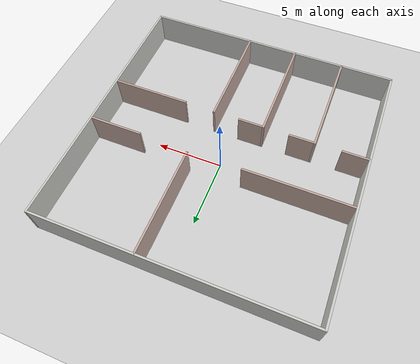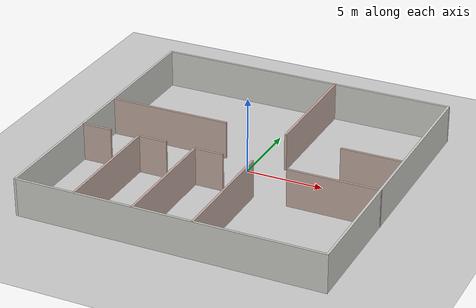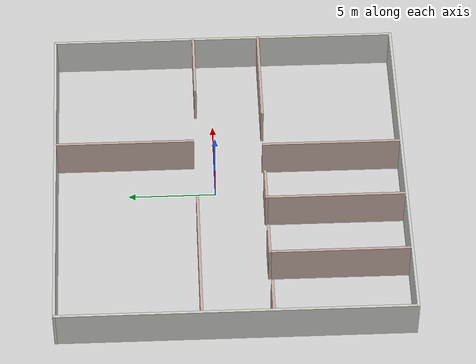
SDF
<sdf version="1.7">
 <world name="default">
  <light name="sun" type="directional">
   <pose>0 0 10 0 -0 0</pose>
   <diffuse>0.8 0.8 0.8 1</diffuse>
   <specular>0.2 0.2 0.2 1</specular>
   <attenuation>
    <range>1000</range>
    <constant>0.9</constant>
    <linear>0.01</linear>
    <quadratic>0.001</quadratic>
   </attenuation>
   <direction>-0.5 0.1 -0.9</direction>
   <spot><inner_angle>0</inner_angle><outer_angle>0</outer_angle><falloff>0</falloff></spot>
  </light>
  <model name="ground_plane">
   <static>1</static>
   <link name="link">
    <collision name="collision">
     <geometry><plane><normal>0 0 1</normal><size>100 100</size></plane></geometry>
     <surface>
      <contact><collide_bitmask>65535</collide_bitmask></contact>
      <friction><ode><mu>100</mu><mu2>50</mu2></ode></friction>
     </surface>
    </collision>
    <visual name="visual">
     <cast_shadows>0</cast_shadows>
     <geometry><plane><normal>0 0 1</normal><size>100 100</size></plane></geometry>
     <material>
      <script><uri>file://media/materials/scripts/gazebo.material</uri><name>Gazebo/Grey</name></script>
     </material>
    </visual>
   </link>
  </model>
  <gravity>0 0 -9.8</gravity>
  <magnetic_field>6e-06 2.3e-05 -4.2e-05</magnetic_field>
  <atmosphere type="adiabatic"/>
  <physics name="default_physics" default="0" type="ode">
   <max_step_size>0.001</max_step_size>
   <real_time_factor>1</real_time_factor>
   <real_time_update_rate>1000</real_time_update_rate>
  </physics>
  <scene><ambient>0.4 0.4 0.4 1</ambient><background>0.7 0.7 0.7 1</background><shadows>1</shadows></scene>
  <spherical_coordinates>
   <surface_model>EARTH_WGS84</surface_model>
   <latitude_deg>0</latitude_deg>
   <longitude_deg>0</longitude_deg>
   <elevation>0</elevation>
   <heading_deg>0</heading_deg>
  </spherical_coordinates>
  <model name="hospital_building">
   <pose>-0.09369 -0.8053 0 0 -0 0</pose>
   <link name="Wall_2">
    <collision name="Wall_2_Collision">
     <geometry><box><size>20 0.15 2.5</size></box></geometry>
     <pose>0 0 1.25 0 -0 0</pose>
    </collision>
    <visual name="Wall_2_Visual">
     <pose>0 0 1.25 0 -0 0</pose>
     <geometry><box><size>20 0.15 2.5</size></box></geometry>
     <material>
      <script><uri>file://media/materials/scripts/gazebo.material</uri><name>Gazebo/CeilingTiled</name></script>
      <ambient>0.760784 0.662745 0.627451 1</ambient>
     </material>
     <meta><layer>0</layer></meta>
    </visual>
    <pose>-0.004813 -9.925 0 0 -0 3.14159</pose>
   </link>
   <link name="Wall_4">
    <collision name="Wall_4_Collision">
     <geometry><box><size>20 0.15 2.5</size></box></geometry>
     <pose>0 0 1.25 0 -0 0</pose>
    </collision>
    <visual name="Wall_4_Visual">
     <pose>0 0 1.25 0 -0 0</pose>
     <geometry><box><size>20 0.15 2.5</size></box></geometry>
     <material>
      <script><uri>file://media/materials/scripts/gazebo.material</uri><name>Gazebo/CeilingTiled</name></script>
      <ambient>0.760784 0.662745 0.627451 1</ambient>
     </material>
     <meta><layer>0</layer></meta>
    </visual>
    <pose>9.92019 0 0 0 -0 1.5708</pose>
   </link>
   <link name="Wall_40">
    <collision name="Wall_40_Collision">
     <geometry><box><size>8 0.15 2.5</size></box></geometry>
     <pose>0 0 1.25 0 -0 0</pose>
    </collision>
    <visual name="Wall_40_Visual">
     <pose>0 0 1.25 0 -0 0</pose>
     <geometry><box><size>8 0.15 2.5</size></box></geometry>
     <material>
      <script><uri>file://media/materials/scripts/gazebo.material</uri><name>Gazebo/Grey</name></script>
      <ambient>0.760784 0.662745 0.627451 1</ambient>
     </material>
     <meta><layer>0</layer></meta>
    </visual>
    <pose>-5.98337 -5.94165 0 0 0 -1.5708</pose>
   </link>
   <link name="Wall_44">
    <collision name="Wall_44_Collision">
     <geometry><box><size>8 0.15 2.5</size></box></geometry>
     <pose>0 0 1.25 0 -0 0</pose>
    </collision>
    <visual name="Wall_44_Visual">
     <pose>0 0 1.25 0 -0 0</pose>
     <geometry><box><size>8 0.15 2.5</size></box></geometry>
     <material>
      <script><uri>file://media/materials/scripts/gazebo.material</uri><name>Gazebo/Grey</name></script>
      <ambient>0.760784 0.662745 0.627451 1</ambient>
     </material>
     <meta><layer>0</layer></meta>
    </visual>
    <pose>-2.13337 -5.94165 0 0 0 -1.5708</pose>
   </link>
   <link name="Wall_47">
    <collision name="Wall_47_Collision">
     <geometry><box><size>8 0.15 2.5</size></box></geometry>
     <pose>0 0 1.25 0 -0 0</pose>
    </collision>
    <visual name="Wall_47_Visual">
     <pose>0 0 1.25 0 -0 0</pose>
     <geometry><box><size>8 0.15 2.5</size></box></geometry>
     <material>
      <script><uri>file://media/materials/scripts/gazebo.material</uri><name>Gazebo/Grey</name></script>
      <ambient>0.760784 0.662745 0.627451 1</ambient>
     </material>
     <meta><layer>0</layer></meta>
    </visual>
    <pose>1.71663 -5.94165 0 0 0 -1.5708</pose>
   </link>
   <link name="Wall_49">
    <collision name="Wall_49_Collision">
     <geometry><box><size>6 0.15 2.5</size></box></geometry>
     <pose>0 0 1.25 0 -0 0</pose>
    </collision>
    <visual name="Wall_49_Visual">
     <pose>0 0 1.25 0 -0 0</pose>
     <geometry><box><size>6 0.15 2.5</size></box></geometry>
     <material>
      <script><uri>file://media/materials/scripts/gazebo.material</uri><name>Gazebo/Grey</name></script>
      <ambient>0.760784 0.662745 0.627451 1</ambient>
     </material>
     <meta><layer>0</layer></meta>
    </visual>
    <pose>7.00481 -2.05374 0 0 -0 3.14159</pose>
   </link>
   <link name="Wall_51">
    <collision name="Wall_51_Collision">
     <geometry><box><size>2 0.15 2.5</size></box></geometry>
     <pose>0 0 1.25 0 -0 0</pose>
    </collision>
    <visual name="Wall_51_Visual">
     <pose>0 0 1.25 0 -0 0</pose>
     <geometry><box><size>2 0.15 2.5</size></box></geometry>
     <material>
      <script><uri>file://media/materials/scripts/gazebo.material</uri><name>Gazebo/Grey</name></script>
      <ambient>0.760784 0.662745 0.627451 1</ambient>
     </material>
     <meta><layer>0</layer></meta>
    </visual>
    <pose>-8.92186 -2.05374 0 0 -0 0</pose>
   </link>
   <link name="Wall_53">
    <collision name="Wall_53_Collision">
     <geometry><box><size>2 0.15 2.5</size></box></geometry>
     <pose>0 0 1.25 0 -0 0</pose>
    </collision>
    <visual name="Wall_53_Visual">
     <pose>0 0 1.25 0 -0 0</pose>
     <geometry><box><size>2 0.15 2.5</size></box></geometry>
     <material>
      <script><uri>file://media/materials/scripts/gazebo.material</uri><name>Gazebo/Grey</name></script>
      <ambient>0.760784 0.662745 0.627451 1</ambient>
     </material>
     <meta><layer>0</layer></meta>
    </visual>
    <pose>-5.05837 -2.01666 0 0 -0 0</pose>
   </link>
   <link name="Wall_55">
    <collision name="Wall_55_Collision">
     <geometry><box><size>2 0.15 2.5</size></box></geometry>
     <pose>0 0 1.25 0 -0 0</pose>
    </collision>
    <visual name="Wall_55_Visual">
     <pose>0 0 1.25 0 -0 0</pose>
     <geometry><box><size>2 0.15 2.5</size></box></geometry>
     <material>
      <script><uri>file://media/materials/scripts/gazebo.material</uri><name>Gazebo/Grey</name></script>
      <ambient>0.760784 0.662745 0.627451 1</ambient>
     </material>
     <meta><layer>0</layer></meta>
    </visual>
    <pose>-1.20837 -2.01666 0 0 -0 0</pose>
   </link>
   <link name="Wall_61">
    <collision name="Wall_61_Collision">
     <geometry><box><size>8 0.15 2.5</size></box></geometry>
     <pose>0 0 1.25 0 -0 0</pose>
    </collision>
    <visual name="Wall_61_Visual">
     <pose>0 0 1.25 0 -0 0</pose>
     <geometry><box><size>8 0.15 2.5</size></box></geometry>
     <material>
      <script><uri>file://media/materials/scripts/gazebo.material</uri><name>Gazebo/Grey</name></script>
      <ambient>0.760784 0.662745 0.627451 1</ambient>
     </material>
     <meta><layer>0</layer></meta>
    </visual>
    <pose>-5.87559 1.87846 0 0 -0 0</pose>
   </link>
   <link name="Wall_63">
    <collision name="Wall_63_Collision">
     <geometry><box><size>8 0.15 2.5</size></box></geometry>
     <pose>0 0 1.25 0 -0 0</pose>
    </collision>
    <visual name="Wall_63_Visual">
     <pose>0 0 1.25 0 -0 0</pose>
     <geometry><box><size>8 0.15 2.5</size></box></geometry>
     <material>
      <script><uri>file://media/materials/scripts/gazebo.material</uri><name>Gazebo/Grey</name></script>
      <ambient>0.760784 0.662745 0.627451 1</ambient>
     </material>
     <meta><layer>0</layer></meta>
    </visual>
    <pose>2.12734 5.96169 0 0 -0 1.5708</pose>
   </link>
   <link name="Wall_65">
    <collision name="Wall_65_Collision">
     <geometry><box><size>4 0.15 2.5</size></box></geometry>
     <pose>0 0 1.25 0 -0 0</pose>
    </collision>
    <visual name="Wall_65_Visual">
     <pose>0 0 1.25 0 -0 0</pose>
     <geometry><box><size>4 0.15 2.5</size></box></geometry>
     <material>
      <script><uri>file://media/materials/scripts/gazebo.material</uri><name>Gazebo/Grey</name></script>
      <ambient>0.760784 0.662745 0.627451 1</ambient>
     </material>
     <meta><layer>0</layer></meta>
    </visual>
    <pose>7.87701 1.77912 0 0 -0 0</pose>
   </link>
   <link name="Wall_7">
    <collision name="Wall_7_Collision">
     <geometry><box><size>20 0.15 2.5</size></box></geometry>
     <pose>0 0 1.25 0 -0 0</pose>
    </collision>
    <visual name="Wall_7_Visual">
     <pose>0 0 1.25 0 -0 0</pose>
     <geometry><box><size>20 0.15 2.5</size></box></geometry>
     <material>
      <script><uri>file://media/materials/scripts/gazebo.material</uri><name>Gazebo/CeilingTiled</name></script>
      <ambient>0.760784 0.662745 0.627451 1</ambient>
     </material>
     <meta><layer>0</layer></meta>
    </visual>
    <pose>-0.004813 9.925 0 0 -0 3.14159</pose>
   </link>
   <link name="Wall_9">
    <collision name="Wall_9_Collision">
     <geometry><box><size>20 0.15 2.5</size></box></geometry>
     <pose>0 0 1.25 0 -0 0</pose>
    </collision>
    <visual name="Wall_9_Visual">
     <pose>0 0 1.25 0 -0 0</pose>
     <geometry><box><size>20 0.15 2.5</size></box></geometry>
     <material>
      <script><uri>file://media/materials/scripts/gazebo.material</uri><name>Gazebo/CeilingTiled</name></script>
      <ambient>0.760784 0.662745 0.627451 1</ambient>
     </material>
     <meta><layer>0</layer></meta>
    </visual>
    <pose>-9.92981 0 0 0 0 -1.5708</pose>
   </link>
   <static>1</static>
  </model>
  <plugin name="ActorPosesPlugin" filename="libActorPosesPlugin.so"/>
 </world>
</sdf>
